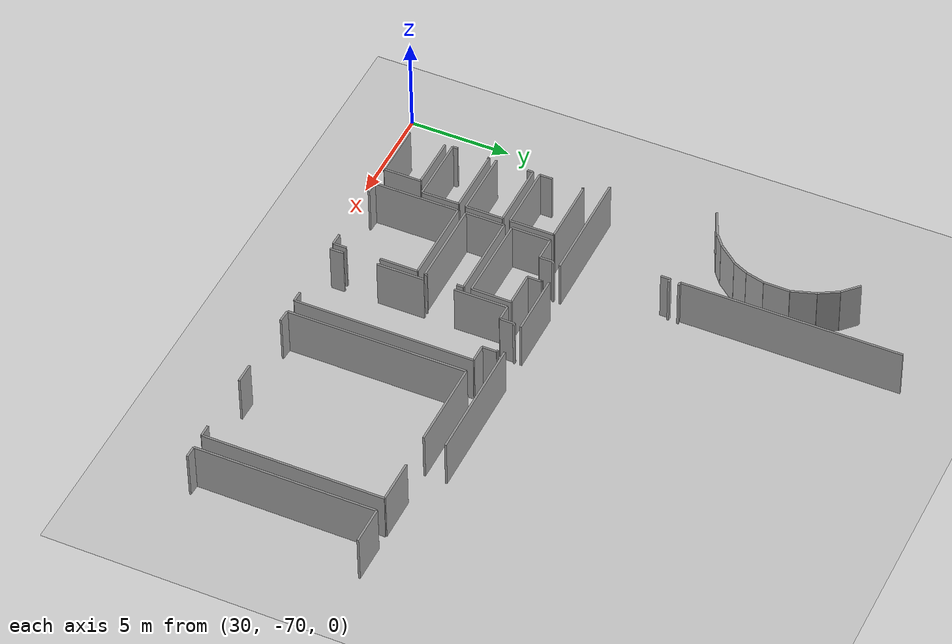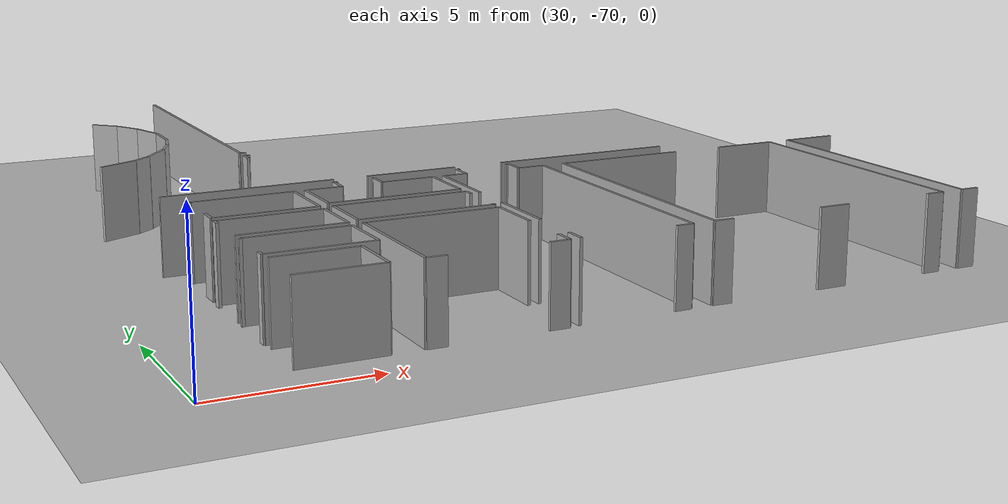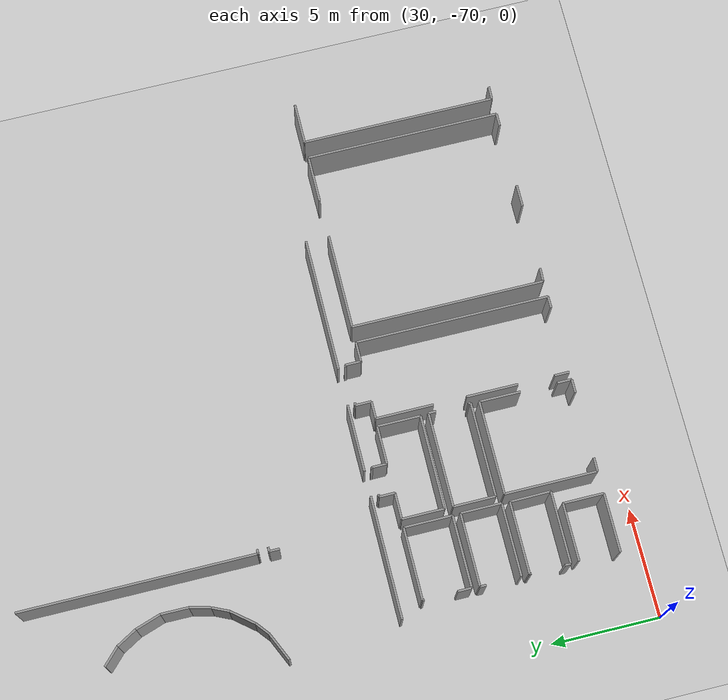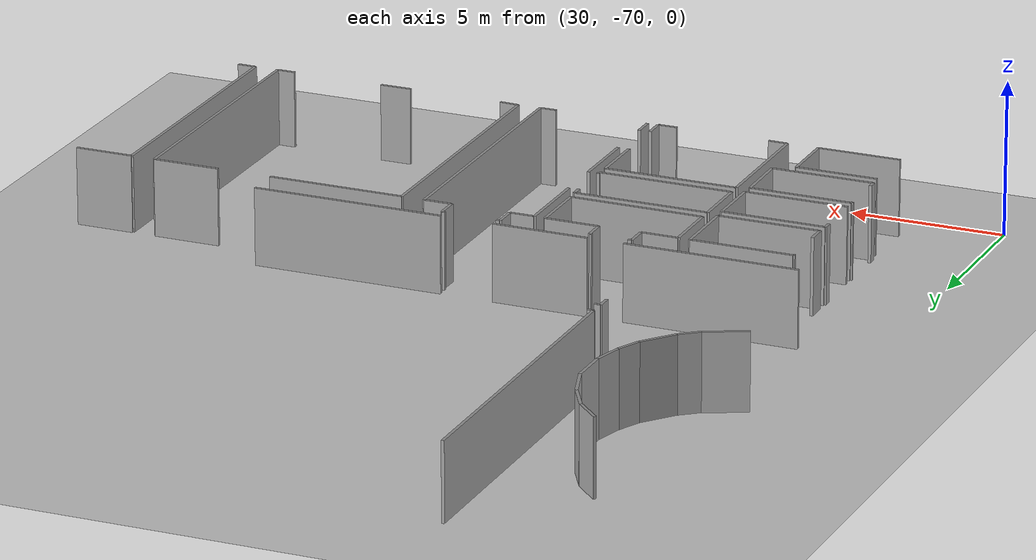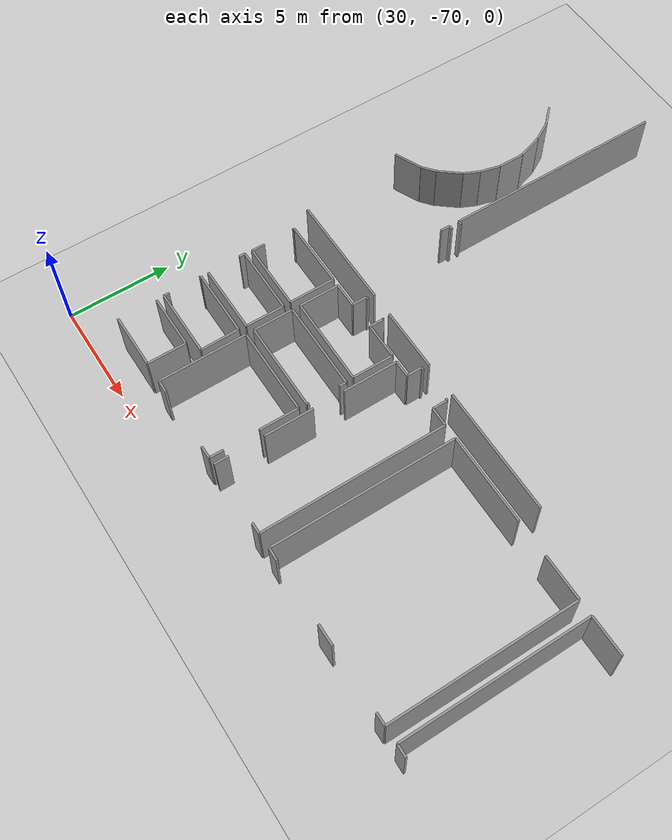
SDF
<sdf version="1.6">
 <world name="default">
  <model name="ground_plane">
   <static>1</static>
   <link name="link">
    <collision name="collision">
     <geometry><plane><normal>0 0 1</normal><size>100 100</size></plane></geometry>
     <surface><friction><ode><mu>100</mu><mu2>50</mu2></ode></friction></surface>
    </collision>
    <visual name="visual">
     <cast_shadows>0</cast_shadows>
     <geometry><plane><normal>0 0 1</normal><size>100 100</size></plane></geometry>
     <material>
      <script><uri>file://media/materials/scripts/gazebo.material</uri><name>Gazebo/Grey</name></script>
     </material>
    </visual>
   </link>
  </model>
  <model name="0510035519_A_40_1_102">
   <static>1</static>
   <link name="Wall_701">
    <collision name="Wall_701_Collision">
     <geometry><box><size>1.0274947132 0.1 2.5</size></box></geometry>
     <pose>0.5137473566 0 1.25 0 0 0</pose>
    </collision>
    <visual name="Wall_701_Visual">
     <pose>0.5137473566 0 1.25 0 0 0</pose>
     <geometry><box><size>1.0274947132 0.1 2.5</size></box></geometry>
     <material>
      <script><uri>file://media/materials/scripts/gazebo.material</uri><name>Gazebo/Grey</name></script>
      <ambient>1 1 1 1</ambient>
     </material>
    </visual>
    <pose>150.058203075 -114.531198373 0 0 0 -0.776827444455</pose>
   </link>
   <link name="Wall_702">
    <collision name="Wall_702_Collision">
     <geometry><box><size>1.05350558703 0.1 2.5</size></box></geometry>
     <pose>0.526752793515 0 1.25 0 0 0</pose>
    </collision>
    <visual name="Wall_702_Visual">
     <pose>0.526752793515 0 1.25 0 0 0</pose>
     <geometry><box><size>1.05350558703 0.1 2.5</size></box></geometry>
     <material>
      <script><uri>file://media/materials/scripts/gazebo.material</uri><name>Gazebo/Grey</name></script>
      <ambient>1 1 1 1</ambient>
     </material>
    </visual>
    <pose>150.790951836 -115.251493201 0 0 0 -1.0551213818</pose>
   </link>
   <link name="Wall_703">
    <collision name="Wall_703_Collision">
     <geometry><box><size>1.23149438151 0.1 2.5</size></box></geometry>
     <pose>0.615747190757 0 1.25 0 0 0</pose>
    </collision>
    <visual name="Wall_703_Visual">
     <pose>0.615747190757 0 1.25 0 0 0</pose>
     <geometry><box><size>1.23149438151 0.1 2.5</size></box></geometry>
     <material>
      <script><uri>file://media/materials/scripts/gazebo.material</uri><name>Gazebo/Grey</name></script>
      <ambient>1 1 1 1</ambient>
     </material>
    </visual>
    <pose>151.310458762 -116.168001017 0 0 0 -1.25452803049</pose>
   </link>
   <link name="Wall_704">
    <collision name="Wall_704_Collision">
     <geometry><box><size>1.27514872346 0.1 2.5</size></box></geometry>
     <pose>0.63757436173 0 1.25 0 0 0</pose>
    </collision>
    <visual name="Wall_704_Visual">
     <pose>0.63757436173 0 1.25 0 0 0</pose>
     <geometry><box><size>1.27514872346 0.1 2.5</size></box></geometry>
     <material>
      <script><uri>file://media/materials/scripts/gazebo.material</uri><name>Gazebo/Grey</name></script>
      <ambient>1 1 1 1</ambient>
     </material>
    </visual>
    <pose>151.693480747 -117.338416571 0 0 0 -1.57617797705</pose>
   </link>
   <link name="Wall_705">
    <collision name="Wall_705_Collision">
     <geometry><box><size>0.969298318984 0.1 2.5</size></box></geometry>
     <pose>0.484649159492 0 1.25 0 0 0</pose>
    </collision>
    <visual name="Wall_705_Visual">
     <pose>0.484649159492 0 1.25 0 0 0</pose>
     <geometry><box><size>0.969298318984 0.1 2.5</size></box></geometry>
     <material>
      <script><uri>file://media/materials/scripts/gazebo.material</uri><name>Gazebo/Grey</name></script>
      <ambient>1 1 1 1</ambient>
     </material>
    </visual>
    <pose>151.686618376 -118.613546829 0 0 0 -1.82200742004</pose>
   </link>
   <link name="Wall_706">
    <collision name="Wall_706_Collision">
     <geometry><box><size>0.806755276125 0.1 2.5</size></box></geometry>
     <pose>0.403377638063 0 1.25 0 0 0</pose>
    </collision>
    <visual name="Wall_706_Visual">
     <pose>0.403377638063 0 1.25 0 0 0</pose>
     <geometry><box><size>0.806755276125 0.1 2.5</size></box></geometry>
     <material>
      <script><uri>file://media/materials/scripts/gazebo.material</uri><name>Gazebo/Grey</name></script>
      <ambient>1 1 1 1</ambient>
     </material>
    </visual>
    <pose>151.445672894 -119.552420892 0 0 0 -2.00696670921</pose>
   </link>
   <link name="Wall_707">
    <collision name="Wall_707_Collision">
     <geometry><box><size>1.25017588832 0.1 2.5</size></box></geometry>
     <pose>0.625087944158 0 1.25 0 0 0</pose>
    </collision>
    <visual name="Wall_707_Visual">
     <pose>0.625087944158 0 1.25 0 0 0</pose>
     <geometry><box><size>1.25017588832 0.1 2.5</size></box></geometry>
     <material>
      <script><uri>file://media/materials/scripts/gazebo.material</uri><name>Gazebo/Grey</name></script>
      <ambient>1 1 1 1</ambient>
     </material>
    </visual>
    <pose>151.104841784 -120.283644682 0 0 0 -2.25264938914</pose>
   </link>
   <link name="Wall_708">
    <collision name="Wall_708_Collision">
     <geometry><box><size>0.734495353789 0.1 2.5</size></box></geometry>
     <pose>0.367247676894 0 1.25 0 0 0</pose>
    </collision>
    <visual name="Wall_708_Visual">
     <pose>0.367247676894 0 1.25 0 0 0</pose>
     <geometry><box><size>0.734495353789 0.1 2.5</size></box></geometry>
     <material>
      <script><uri>file://media/materials/scripts/gazebo.material</uri><name>Gazebo/Grey</name></script>
      <ambient>1 1 1 1</ambient>
     </material>
    </visual>
    <pose>150.316939891 -121.254288982 0 0 0 -2.46209601873</pose>
   </link>
   <link name="Wall_709">
    <collision name="Wall_709_Collision">
     <geometry><box><size>1.41161128623 0.1 2.5</size></box></geometry>
     <pose>0.705805643115 0 1.25 0 0 0</pose>
    </collision>
    <visual name="Wall_709_Visual">
     <pose>0.705805643115 0 1.25 0 0 0</pose>
     <geometry><box><size>1.41161128623 0.1 2.5</size></box></geometry>
     <material>
      <script><uri>file://media/materials/scripts/gazebo.material</uri><name>Gazebo/Grey</name></script>
      <ambient>1 1 1 1</ambient>
     </material>
    </visual>
    <pose>149.745583937 -121.715846995 0 0 0 -2.7162019537</pose>
   </link>
   <link name="Wall_770">
    <collision name="Wall_770_Collision">
     <geometry><box><size>3.28300927691 0.1 2.5</size></box></geometry>
     <pose>1.64150463845 0 1.25 0 0 0</pose>
    </collision>
    <visual name="Wall_770_Visual">
     <pose>1.64150463845 0 1.25 0 0 0</pose>
     <geometry><box><size>3.28300927691 0.1 2.5</size></box></geometry>
     <material>
      <script><uri>file://media/materials/scripts/gazebo.material</uri><name>Gazebo/Grey</name></script>
      <ambient>1 1 1 1</ambient>
     </material>
    </visual>
    <pose>149.57224552 -128.491294955 0 0 0 0.0</pose>
   </link>
   <link name="Wall_771">
    <collision name="Wall_771_Collision">
     <geometry><box><size>2.20688778752 0.1 2.5</size></box></geometry>
     <pose>1.10344389376 0 1.25 0 0 0</pose>
    </collision>
    <visual name="Wall_771_Visual">
     <pose>1.10344389376 0 1.25 0 0 0</pose>
     <geometry><box><size>2.20688778752 0.1 2.5</size></box></geometry>
     <material>
      <script><uri>file://media/materials/scripts/gazebo.material</uri><name>Gazebo/Grey</name></script>
      <ambient>1 1 1 1</ambient>
     </material>
    </visual>
    <pose>152.855254797 -128.491294955 0 0 0 -1.57079632679</pose>
   </link>
   <link name="Wall_772">
    <collision name="Wall_772_Collision">
     <geometry><box><size>3.27868852459 0.1 2.5</size></box></geometry>
     <pose>1.6393442623 0 1.25 0 0 0</pose>
    </collision>
    <visual name="Wall_772_Visual">
     <pose>1.6393442623 0 1.25 0 0 0</pose>
     <geometry><box><size>3.27868852459 0.1 2.5</size></box></geometry>
     <material>
      <script><uri>file://media/materials/scripts/gazebo.material</uri><name>Gazebo/Grey</name></script>
      <ambient>1 1 1 1</ambient>
     </material>
    </visual>
    <pose>152.855254797 -130.698182742 0 0 0 3.14159265359</pose>
   </link>
   <link name="Wall_773">
    <collision name="Wall_773_Collision">
     <geometry><box><size>0.629559029102 0.1 2.5</size></box></geometry>
     <pose>0.314779514551 0 1.25 0 0 0</pose>
    </collision>
    <visual name="Wall_773_Visual">
     <pose>0.314779514551 0 1.25 0 0 0</pose>
     <geometry><box><size>0.629559029102 0.1 2.5</size></box></geometry>
     <material>
      <script><uri>file://media/materials/scripts/gazebo.material</uri><name>Gazebo/Grey</name></script>
      <ambient>1 1 1 1</ambient>
     </material>
    </visual>
    <pose>149.576566273 -130.698182742 0 0 0 1.57079632679</pose>
   </link>
   <link name="Wall_774">
    <collision name="Wall_774_Collision">
     <geometry><box><size>0.0847461307844 0.1 2.5</size></box></geometry>
     <pose>0.0423730653922 0 1.25 0 0 0</pose>
    </collision>
    <visual name="Wall_774_Visual">
     <pose>0.0423730653922 0 1.25 0 0 0</pose>
     <geometry><box><size>0.0847461307844 0.1 2.5</size></box></geometry>
     <material>
      <script><uri>file://media/materials/scripts/gazebo.material</uri><name>Gazebo/Grey</name></script>
      <ambient>1 1 1 1</ambient>
     </material>
    </visual>
    <pose>149.576566273 -128.575930868 0 0 0 1.62180309715</pose>
   </link>
   <link name="Wall_775">
    <collision name="Wall_775_Collision">
     <geometry><box><size>3.32342101919 0.1 2.5</size></box></geometry>
     <pose>1.66171050959 0 1.25 0 0 0</pose>
    </collision>
    <visual name="Wall_775_Visual">
     <pose>1.66171050959 0 1.25 0 0 0</pose>
     <geometry><box><size>3.32342101919 0.1 2.5</size></box></geometry>
     <material>
      <script><uri>file://media/materials/scripts/gazebo.material</uri><name>Gazebo/Grey</name></script>
      <ambient>1 1 1 1</ambient>
     </material>
    </visual>
    <pose>152.867962892 -132.926165968 0 0 0 3.14159265359</pose>
   </link>
   <link name="Wall_777">
    <collision name="Wall_777_Collision">
     <geometry><box><size>0.283644681662 0.1 2.5</size></box></geometry>
     <pose>0.141822340831 0 1.25 0 0 0</pose>
    </collision>
    <visual name="Wall_777_Visual">
     <pose>0.141822340831 0 1.25 0 0 0</pose>
     <geometry><box><size>0.283644681662 0.1 2.5</size></box></geometry>
     <material>
      <script><uri>file://media/materials/scripts/gazebo.material</uri><name>Gazebo/Grey</name></script>
      <ambient>1 1 1 1</ambient>
     </material>
    </visual>
    <pose>149.544541873 -131.343499809 0 0 0 1.57079632679</pose>
   </link>
   <link name="Wall_778">
    <collision name="Wall_778_Collision">
     <geometry><box><size>3.326470962 0.1 2.5</size></box></geometry>
     <pose>1.663235481 0 1.25 0 0 0</pose>
    </collision>
    <visual name="Wall_778_Visual">
     <pose>1.663235481 0 1.25 0 0 0</pose>
     <geometry><box><size>3.326470962 0.1 2.5</size></box></geometry>
     <material>
      <script><uri>file://media/materials/scripts/gazebo.material</uri><name>Gazebo/Grey</name></script>
      <ambient>1 1 1 1</ambient>
     </material>
    </visual>
    <pose>149.544541873 -131.059855128 0 0 0 0.0</pose>
   </link>
   <link name="Wall_779">
    <collision name="Wall_779_Collision">
     <geometry><box><size>1.86631333213 0.1 2.5</size></box></geometry>
     <pose>0.933156666063 0 1.25 0 0 0</pose>
    </collision>
    <visual name="Wall_779_Visual">
     <pose>0.933156666063 0 1.25 0 0 0</pose>
     <geometry><box><size>1.86631333213 0.1 2.5</size></box></geometry>
     <material>
      <script><uri>file://media/materials/scripts/gazebo.material</uri><name>Gazebo/Grey</name></script>
      <ambient>1 1 1 1</ambient>
     </material>
    </visual>
    <pose>152.871012835 -131.059855128 0 0 0 -1.57243053479</pose>
   </link>
   <link name="Wall_780">
    <collision name="Wall_780_Collision">
     <geometry><box><size>3.30003812429 0.1 2.5</size></box></geometry>
     <pose>1.65001906214 0 1.25 0 0 0</pose>
    </collision>
    <visual name="Wall_780_Visual">
     <pose>1.65001906214 0 1.25 0 0 0</pose>
     <geometry><box><size>3.30003812429 0.1 2.5</size></box></geometry>
     <material>
      <script><uri>file://media/materials/scripts/gazebo.material</uri><name>Gazebo/Grey</name></script>
      <ambient>1 1 1 1</ambient>
     </material>
    </visual>
    <pose>152.863896302 -135.154911679 0 0 0 3.14159265359</pose>
   </link>
   <link name="Wall_781">
    <collision name="Wall_781_Collision">
     <geometry><box><size>0.26077011056 0.1 2.5</size></box></geometry>
     <pose>0.13038505528 0 1.25 0 0 0</pose>
    </collision>
    <visual name="Wall_781_Visual">
     <pose>0.13038505528 0 1.25 0 0 0</pose>
     <geometry><box><size>0.26077011056 0.1 2.5</size></box></geometry>
     <material>
      <script><uri>file://media/materials/scripts/gazebo.material</uri><name>Gazebo/Grey</name></script>
      <ambient>1 1 1 1</ambient>
     </material>
    </visual>
    <pose>149.563858178 -135.154911679 0 0 0 1.57079632679</pose>
   </link>
   <link name="Wall_782">
    <collision name="Wall_782_Collision">
     <geometry><box><size>0.0813318083619 0.1 2.5</size></box></geometry>
     <pose>0.040665904181 0 1.25 0 0 0</pose>
    </collision>
    <visual name="Wall_782_Visual">
     <pose>0.040665904181 0 1.25 0 0 0</pose>
     <geometry><box><size>0.0813318083619 0.1 2.5</size></box></geometry>
     <material>
      <script><uri>file://media/materials/scripts/gazebo.material</uri><name>Gazebo/Grey</name></script>
      <ambient>1 1 1 1</ambient>
     </material>
    </visual>
    <pose>149.563858178 -133.373745076 0 0 0 1.57079632679</pose>
   </link>
   <link name="Wall_783">
    <collision name="Wall_783_Collision">
     <geometry><box><size>3.27818020079 0.1 2.5</size></box></geometry>
     <pose>1.63909010039 0 1.25 0 0 0</pose>
    </collision>
    <visual name="Wall_783_Visual">
     <pose>1.63909010039 0 1.25 0 0 0</pose>
     <geometry><box><size>3.27818020079 0.1 2.5</size></box></geometry>
     <material>
      <script><uri>file://media/materials/scripts/gazebo.material</uri><name>Gazebo/Grey</name></script>
      <ambient>1 1 1 1</ambient>
     </material>
    </visual>
    <pose>149.563858178 -133.292413267 0 0 0 0.0</pose>
   </link>
   <link name="Wall_784">
    <collision name="Wall_784_Collision">
     <geometry><box><size>1.86262666727 0.1 2.5</size></box></geometry>
     <pose>0.931313333634 0 1.25 0 0 0</pose>
    </collision>
    <visual name="Wall_784_Visual">
     <pose>0.931313333634 0 1.25 0 0 0</pose>
     <geometry><box><size>1.86262666727 0.1 2.5</size></box></geometry>
     <material>
      <script><uri>file://media/materials/scripts/gazebo.material</uri><name>Gazebo/Grey</name></script>
      <ambient>1 1 1 1</ambient>
     </material>
    </visual>
    <pose>152.842038378 -133.292413267 0 0 0 -1.55906105768</pose>
   </link>
   <link name="Wall_785">
    <collision name="Wall_785_Collision">
     <geometry><box><size>2.61888422925 0.1 2.5</size></box></geometry>
     <pose>1.30944211463 0 1.25 0 0 0</pose>
    </collision>
    <visual name="Wall_785_Visual">
     <pose>1.30944211463 0 1.25 0 0 0</pose>
     <geometry><box><size>2.61888422925 0.1 2.5</size></box></geometry>
     <material>
      <script><uri>file://media/materials/scripts/gazebo.material</uri><name>Gazebo/Grey</name></script>
      <ambient>1 1 1 1</ambient>
     </material>
    </visual>
    <pose>149.59893252 -135.532596264 0 0 0 0.0</pose>
   </link>
   <link name="Wall_786">
    <collision name="Wall_786_Collision">
     <geometry><box><size>1.85563604016 0.1 2.5</size></box></geometry>
     <pose>0.927818020079 0 1.25 0 0 0</pose>
    </collision>
    <visual name="Wall_786_Visual">
     <pose>0.927818020079 0 1.25 0 0 0</pose>
     <geometry><box><size>1.85563604016 0.1 2.5</size></box></geometry>
     <material>
      <script><uri>file://media/materials/scripts/gazebo.material</uri><name>Gazebo/Grey</name></script>
      <ambient>1 1 1 1</ambient>
     </material>
    </visual>
    <pose>152.217816749 -135.532596264 0 0 0 -1.57079632679</pose>
   </link>
   <link name="Wall_787">
    <collision name="Wall_787_Collision">
     <geometry><box><size>2.67962892362 0.1 2.5</size></box></geometry>
     <pose>1.33981446181 0 1.25 0 0 0</pose>
    </collision>
    <visual name="Wall_787_Visual">
     <pose>1.33981446181 0 1.25 0 0 0</pose>
     <geometry><box><size>2.67962892362 0.1 2.5</size></box></geometry>
     <material>
      <script><uri>file://media/materials/scripts/gazebo.material</uri><name>Gazebo/Grey</name></script>
      <ambient>1 1 1 1</ambient>
     </material>
    </visual>
    <pose>152.217816749 -137.388232304 0 0 0 3.14159265359</pose>
   </link>
   <link name="Wall_791">
    <collision name="Wall_791_Collision">
     <geometry><box><size>1.93391790571 0.1 2.5</size></box></geometry>
     <pose>0.966958952853 0 1.25 0 0 0</pose>
    </collision>
    <visual name="Wall_791_Visual">
     <pose>0.966958952853 0 1.25 0 0 0</pose>
     <geometry><box><size>1.93391790571 0.1 2.5</size></box></geometry>
     <material>
      <script><uri>file://media/materials/scripts/gazebo.material</uri><name>Gazebo/Grey</name></script>
      <ambient>1 1 1 1</ambient>
     </material>
    </visual>
    <pose>153.23395603 -130.430550261 0 0 0 1.57079632679</pose>
   </link>
   <link name="Wall_792">
    <collision name="Wall_792_Collision">
     <geometry><box><size>1.19634006862 0.1 2.5</size></box></geometry>
     <pose>0.598170034312 0 1.25 0 0 0</pose>
    </collision>
    <visual name="Wall_792_Visual">
     <pose>0.598170034312 0 1.25 0 0 0</pose>
     <geometry><box><size>1.19634006862 0.1 2.5</size></box></geometry>
     <material>
      <script><uri>file://media/materials/scripts/gazebo.material</uri><name>Gazebo/Grey</name></script>
      <ambient>1 1 1 1</ambient>
     </material>
    </visual>
    <pose>153.23395603 -128.496632355 0 0 0 0.0</pose>
   </link>
   <link name="Wall_793">
    <collision name="Wall_793_Collision">
     <geometry><box><size>0.715719913585 0.1 2.5</size></box></geometry>
     <pose>0.357859956792 0 1.25 0 0 0</pose>
    </collision>
    <visual name="Wall_793_Visual">
     <pose>0.357859956792 0 1.25 0 0 0</pose>
     <geometry><box><size>0.715719913585 0.1 2.5</size></box></geometry>
     <material>
      <script><uri>file://media/materials/scripts/gazebo.material</uri><name>Gazebo/Grey</name></script>
      <ambient>1 1 1 1</ambient>
     </material>
    </visual>
    <pose>154.430296099 -128.496632355 0 0 0 1.57079632679</pose>
   </link>
   <link name="Wall_794">
    <collision name="Wall_794_Collision">
     <geometry><box><size>0.12123522684 0.1 2.5</size></box></geometry>
     <pose>0.0606176134198 0 1.25 0 0 0</pose>
    </collision>
    <visual name="Wall_794_Visual">
     <pose>0.0606176134198 0 1.25 0 0 0</pose>
     <geometry><box><size>0.12123522684 0.1 2.5</size></box></geometry>
     <material>
      <script><uri>file://media/materials/scripts/gazebo.material</uri><name>Gazebo/Grey</name></script>
      <ambient>1 1 1 1</ambient>
     </material>
    </visual>
    <pose>154.430296099 -127.780912441 0 0 0 0.0</pose>
   </link>
   <link name="Wall_795">
    <collision name="Wall_795_Collision">
     <geometry><box><size>0.0617613419748 0.1 2.5</size></box></geometry>
     <pose>0.0308806709874 0 1.25 0 0 0</pose>
    </collision>
    <visual name="Wall_795_Visual">
     <pose>0.0308806709874 0 1.25 0 0 0</pose>
     <geometry><box><size>0.0617613419748 0.1 2.5</size></box></geometry>
     <material>
      <script><uri>file://media/materials/scripts/gazebo.material</uri><name>Gazebo/Grey</name></script>
      <ambient>1 1 1 1</ambient>
     </material>
    </visual>
    <pose>155.720421909 -127.780912441 0 0 0 0.0</pose>
   </link>
   <link name="Wall_796">
    <collision name="Wall_796_Collision">
     <geometry><box><size>0.68979539967 0.1 2.5</size></box></geometry>
     <pose>0.344897699835 0 1.25 0 0 0</pose>
    </collision>
    <visual name="Wall_796_Visual">
     <pose>0.344897699835 0 1.25 0 0 0</pose>
     <geometry><box><size>0.68979539967 0.1 2.5</size></box></geometry>
     <material>
      <script><uri>file://media/materials/scripts/gazebo.material</uri><name>Gazebo/Grey</name></script>
      <ambient>1 1 1 1</ambient>
     </material>
    </visual>
    <pose>155.782183251 -127.780912441 0 0 0 -1.57079632679</pose>
   </link>
   <link name="Wall_797">
    <collision name="Wall_797_Collision">
     <geometry><box><size>1.74024653704 0.1 2.5</size></box></geometry>
     <pose>0.870123268522 0 1.25 0 0 0</pose>
    </collision>
    <visual name="Wall_797_Visual">
     <pose>0.870123268522 0 1.25 0 0 0</pose>
     <geometry><box><size>1.74024653704 0.1 2.5</size></box></geometry>
     <material>
      <script><uri>file://media/materials/scripts/gazebo.material</uri><name>Gazebo/Grey</name></script>
      <ambient>1 1 1 1</ambient>
     </material>
    </visual>
    <pose>155.782183251 -128.470707841 0 0 0 0.0</pose>
   </link>
   <link name="Wall_798">
    <collision name="Wall_798_Collision">
     <geometry><box><size>1.98170034312 0.1 2.5</size></box></geometry>
     <pose>0.990850171559 0 1.25 0 0 0</pose>
    </collision>
    <visual name="Wall_798_Visual">
     <pose>0.990850171559 0 1.25 0 0 0</pose>
     <geometry><box><size>1.98170034312 0.1 2.5</size></box></geometry>
     <material>
      <script><uri>file://media/materials/scripts/gazebo.material</uri><name>Gazebo/Grey</name></script>
      <ambient>1 1 1 1</ambient>
     </material>
    </visual>
    <pose>157.522429788 -128.470707841 0 0 0 -1.57079632679</pose>
   </link>
   <link name="Wall_799">
    <collision name="Wall_799_Collision">
     <geometry><box><size>4.28852946125 0.1 2.5</size></box></geometry>
     <pose>2.14426473063 0 1.25 0 0 0</pose>
    </collision>
    <visual name="Wall_799_Visual">
     <pose>2.14426473063 0 1.25 0 0 0</pose>
     <geometry><box><size>4.28852946125 0.1 2.5</size></box></geometry>
     <material>
      <script><uri>file://media/materials/scripts/gazebo.material</uri><name>Gazebo/Grey</name></script>
      <ambient>1 1 1 1</ambient>
     </material>
    </visual>
    <pose>157.522429788 -130.452408184 0 0 0 3.13649579735</pose>
   </link>
   <link name="Wall_800">
    <collision name="Wall_800_Collision">
     <geometry><box><size>1.92832634388 0.1 2.5</size></box></geometry>
     <pose>0.964163171941 0 1.25 0 0 0</pose>
    </collision>
    <visual name="Wall_800_Visual">
     <pose>0.964163171941 0 1.25 0 0 0</pose>
     <geometry><box><size>1.92832634388 0.1 2.5</size></box></geometry>
     <material>
      <script><uri>file://media/materials/scripts/gazebo.material</uri><name>Gazebo/Grey</name></script>
      <ambient>1 1 1 1</ambient>
     </material>
    </visual>
    <pose>153.22988944 -132.751556742 0 0 0 1.57079632679</pose>
   </link>
   <link name="Wall_801">
    <collision name="Wall_801_Collision">
     <geometry><box><size>4.33066463337 0.1 2.5</size></box></geometry>
     <pose>2.16533231669 0 1.25 0 0 0</pose>
    </collision>
    <visual name="Wall_801_Visual">
     <pose>2.16533231669 0 1.25 0 0 0</pose>
     <geometry><box><size>4.33066463337 0.1 2.5</size></box></geometry>
     <material>
      <script><uri>file://media/materials/scripts/gazebo.material</uri><name>Gazebo/Grey</name></script>
      <ambient>1 1 1 1</ambient>
     </material>
    </visual>
    <pose>153.22988944 -130.823230398 0 0 0 0.0</pose>
   </link>
   <link name="Wall_802">
    <collision name="Wall_802_Collision">
     <geometry><box><size>0.33930613801 0.1 2.5</size></box></geometry>
     <pose>0.169653069005 0 1.25 0 0 0</pose>
    </collision>
    <visual name="Wall_802_Visual">
     <pose>0.169653069005 0 1.25 0 0 0</pose>
     <geometry><box><size>0.33930613801 0.1 2.5</size></box></geometry>
     <material>
      <script><uri>file://media/materials/scripts/gazebo.material</uri><name>Gazebo/Grey</name></script>
      <ambient>1 1 1 1</ambient>
     </material>
    </visual>
    <pose>157.560554073 -130.823230398 0 0 0 -1.57079632679</pose>
   </link>
   <link name="Wall_803">
    <collision name="Wall_803_Collision">
     <geometry><box><size>0.109289617486 0.1 2.5</size></box></geometry>
     <pose>0.0546448087432 0 1.25 0 0 0</pose>
    </collision>
    <visual name="Wall_803_Visual">
     <pose>0.0546448087432 0 1.25 0 0 0</pose>
     <geometry><box><size>0.109289617486 0.1 2.5</size></box></geometry>
     <material>
      <script><uri>file://media/materials/scripts/gazebo.material</uri><name>Gazebo/Grey</name></script>
      <ambient>1 1 1 1</ambient>
     </material>
    </visual>
    <pose>157.560554073 -132.647350362 0 0 0 -1.57079632679</pose>
   </link>
   <link name="Wall_804">
    <collision name="Wall_804_Collision">
     <geometry><box><size>4.33066761667 0.1 2.5</size></box></geometry>
     <pose>2.16533380833 0 1.25 0 0 0</pose>
    </collision>
    <visual name="Wall_804_Visual">
     <pose>2.16533380833 0 1.25 0 0 0</pose>
     <geometry><box><size>4.33066761667 0.1 2.5</size></box></geometry>
     <material>
      <script><uri>file://media/materials/scripts/gazebo.material</uri><name>Gazebo/Grey</name></script>
      <ambient>1 1 1 1</ambient>
     </material>
    </visual>
    <pose>157.560554073 -132.75663998 0 0 0 3.14041887632</pose>
   </link>
   <link name="Wall_805">
    <collision name="Wall_805_Collision">
     <geometry><box><size>4.23738721566 0.1 2.5</size></box></geometry>
     <pose>2.11869360783 0 1.25 0 0 0</pose>
    </collision>
    <visual name="Wall_805_Visual">
     <pose>2.11869360783 0 1.25 0 0 0</pose>
     <geometry><box><size>4.23738721566 0.1 2.5</size></box></geometry>
     <material>
      <script><uri>file://media/materials/scripts/gazebo.material</uri><name>Gazebo/Grey</name></script>
      <ambient>1 1 1 1</ambient>
     </material>
    </visual>
    <pose>153.235735163 -137.383403228 0 0 0 1.57079632679</pose>
   </link>
   <link name="Wall_806">
    <collision name="Wall_806_Collision">
     <geometry><box><size>4.28974456729 0.1 2.5</size></box></geometry>
     <pose>2.14487228364 0 1.25 0 0 0</pose>
    </collision>
    <visual name="Wall_806_Visual">
     <pose>2.14487228364 0 1.25 0 0 0</pose>
     <geometry><box><size>4.28974456729 0.1 2.5</size></box></geometry>
     <material>
      <script><uri>file://media/materials/scripts/gazebo.material</uri><name>Gazebo/Grey</name></script>
      <ambient>1 1 1 1</ambient>
     </material>
    </visual>
    <pose>153.235735163 -133.146016012 0 0 0 0.0</pose>
   </link>
   <link name="Wall_807">
    <collision name="Wall_807_Collision">
     <geometry><box><size>1.88130639217 0.1 2.5</size></box></geometry>
     <pose>0.940653196086 0 1.25 0 0 0</pose>
    </collision>
    <visual name="Wall_807_Visual">
     <pose>0.940653196086 0 1.25 0 0 0</pose>
     <geometry><box><size>1.88130639217 0.1 2.5</size></box></geometry>
     <material>
      <script><uri>file://media/materials/scripts/gazebo.material</uri><name>Gazebo/Grey</name></script>
      <ambient>1 1 1 1</ambient>
     </material>
    </visual>
    <pose>157.525479731 -133.146016012 0 0 0 -1.57079632679</pose>
   </link>
   <link name="Wall_808">
    <collision name="Wall_808_Collision">
     <geometry><box><size>0.66514169526 0.1 2.5</size></box></geometry>
     <pose>0.33257084763 0 1.25 0 0 0</pose>
    </collision>
    <visual name="Wall_808_Visual">
     <pose>0.33257084763 0 1.25 0 0 0</pose>
     <geometry><box><size>0.66514169526 0.1 2.5</size></box></geometry>
     <material>
      <script><uri>file://media/materials/scripts/gazebo.material</uri><name>Gazebo/Grey</name></script>
      <ambient>1 1 1 1</ambient>
     </material>
    </visual>
    <pose>157.525479731 -136.727919685 0 0 0 -1.57079632679</pose>
   </link>
   <link name="Wall_809">
    <collision name="Wall_809_Collision">
     <geometry><box><size>0.622188333969 0.1 2.5</size></box></geometry>
     <pose>0.311094166984 0 1.25 0 0 0</pose>
    </collision>
    <visual name="Wall_809_Visual">
     <pose>0.311094166984 0 1.25 0 0 0</pose>
     <geometry><box><size>0.622188333969 0.1 2.5</size></box></geometry>
     <material>
      <script><uri>file://media/materials/scripts/gazebo.material</uri><name>Gazebo/Grey</name></script>
      <ambient>1 1 1 1</ambient>
     </material>
    </visual>
    <pose>157.525479731 -137.39306138 0 0 0 3.14159265359</pose>
   </link>
   <link name="Wall_810">
    <collision name="Wall_810_Collision">
     <geometry><box><size>0.620230241123 0.1 2.5</size></box></geometry>
     <pose>0.310115120562 0 1.25 0 0 0</pose>
    </collision>
    <visual name="Wall_810_Visual">
     <pose>0.310115120562 0 1.25 0 0 0</pose>
     <geometry><box><size>0.620230241123 0.1 2.5</size></box></geometry>
     <material>
      <script><uri>file://media/materials/scripts/gazebo.material</uri><name>Gazebo/Grey</name></script>
      <ambient>1 1 1 1</ambient>
     </material>
    </visual>
    <pose>153.855890202 -137.39306138 0 0 0 3.12602014201</pose>
   </link>
   <link name="Wall_811">
    <collision name="Wall_811_Collision">
     <geometry><box><size>0.80213495997 0.1 2.5</size></box></geometry>
     <pose>0.401067479985 0 1.25 0 0 0</pose>
    </collision>
    <visual name="Wall_811_Visual">
     <pose>0.401067479985 0 1.25 0 0 0</pose>
     <geometry><box><size>0.80213495997 0.1 2.5</size></box></geometry>
     <material>
      <script><uri>file://media/materials/scripts/gazebo.material</uri><name>Gazebo/Grey</name></script>
      <ambient>1 1 1 1</ambient>
     </material>
    </visual>
    <pose>157.877748126 -128.493582412 0 0 0 0.0</pose>
   </link>
   <link name="Wall_812">
    <collision name="Wall_812_Collision">
     <geometry><box><size>0.729698818147 0.1 2.5</size></box></geometry>
     <pose>0.364849409074 0 1.25 0 0 0</pose>
    </collision>
    <visual name="Wall_812_Visual">
     <pose>0.364849409074 0 1.25 0 0 0</pose>
     <geometry><box><size>0.729698818147 0.1 2.5</size></box></geometry>
     <material>
      <script><uri>file://media/materials/scripts/gazebo.material</uri><name>Gazebo/Grey</name></script>
      <ambient>1 1 1 1</ambient>
     </material>
    </visual>
    <pose>158.679883086 -128.493582412 0 0 0 1.57079632679</pose>
   </link>
   <link name="Wall_813">
    <collision name="Wall_813_Collision">
     <geometry><box><size>0.122760198246 0.1 2.5</size></box></geometry>
     <pose>0.0613800991231 0 1.25 0 0 0</pose>
    </collision>
    <visual name="Wall_813_Visual">
     <pose>0.0613800991231 0 1.25 0 0 0</pose>
     <geometry><box><size>0.122760198246 0.1 2.5</size></box></geometry>
     <material>
      <script><uri>file://media/materials/scripts/gazebo.material</uri><name>Gazebo/Grey</name></script>
      <ambient>1 1 1 1</ambient>
     </material>
    </visual>
    <pose>158.679883086 -127.763883594 0 0 0 0.0</pose>
   </link>
   <link name="Wall_814">
    <collision name="Wall_814_Collision">
     <geometry><box><size>0.0991231414411 0.1 2.5</size></box></geometry>
     <pose>0.0495615707205 0 1.25 0 0 0</pose>
    </collision>
    <visual name="Wall_814_Visual">
     <pose>0.0495615707205 0 1.25 0 0 0</pose>
     <geometry><box><size>0.0991231414411 0.1 2.5</size></box></geometry>
     <material>
      <script><uri>file://media/materials/scripts/gazebo.material</uri><name>Gazebo/Grey</name></script>
      <ambient>1 1 1 1</ambient>
     </material>
    </visual>
    <pose>160.477570212 -127.763883594 0 0 0 0.0</pose>
   </link>
   <link name="Wall_815">
    <collision name="Wall_815_Collision">
     <geometry><box><size>0.721819799212 0.1 2.5</size></box></geometry>
     <pose>0.360909899606 0 1.25 0 0 0</pose>
    </collision>
    <visual name="Wall_815_Visual">
     <pose>0.360909899606 0 1.25 0 0 0</pose>
     <geometry><box><size>0.721819799212 0.1 2.5</size></box></geometry>
     <material>
      <script><uri>file://media/materials/scripts/gazebo.material</uri><name>Gazebo/Grey</name></script>
      <ambient>1 1 1 1</ambient>
     </material>
    </visual>
    <pose>160.576693354 -127.763883594 0 0 0 -1.57079632679</pose>
   </link>
   <link name="Wall_816">
    <collision name="Wall_816_Collision">
     <geometry><box><size>0.906341339433 0.1 2.5</size></box></geometry>
     <pose>0.453170669717 0 1.25 0 0 0</pose>
    </collision>
    <visual name="Wall_816_Visual">
     <pose>0.453170669717 0 1.25 0 0 0</pose>
     <geometry><box><size>0.906341339433 0.1 2.5</size></box></geometry>
     <material>
      <script><uri>file://media/materials/scripts/gazebo.material</uri><name>Gazebo/Grey</name></script>
      <ambient>1 1 1 1</ambient>
     </material>
    </visual>
    <pose>160.576693354 -128.485703393 0 0 0 0.0</pose>
   </link>
   <link name="Wall_817">
    <collision name="Wall_817_Collision">
     <geometry><box><size>8.89388740628 0.1 2.5</size></box></geometry>
     <pose>4.44694370314 0 1.25 0 0 0</pose>
    </collision>
    <visual name="Wall_817_Visual">
     <pose>4.44694370314 0 1.25 0 0 0</pose>
     <geometry><box><size>8.89388740628 0.1 2.5</size></box></geometry>
     <material>
      <script><uri>file://media/materials/scripts/gazebo.material</uri><name>Gazebo/Grey</name></script>
      <ambient>1 1 1 1</ambient>
     </material>
    </visual>
    <pose>161.483034693 -128.485703393 0 0 0 -1.57079632679</pose>
   </link>
   <link name="Wall_818">
    <collision name="Wall_818_Collision">
     <geometry><box><size>0.540856525607 0.1 2.5</size></box></geometry>
     <pose>0.270428262803 0 1.25 0 0 0</pose>
    </collision>
    <visual name="Wall_818_Visual">
     <pose>0.270428262803 0 1.25 0 0 0</pose>
     <geometry><box><size>0.540856525607 0.1 2.5</size></box></geometry>
     <material>
      <script><uri>file://media/materials/scripts/gazebo.material</uri><name>Gazebo/Grey</name></script>
      <ambient>1 1 1 1</ambient>
     </material>
    </visual>
    <pose>161.483034693 -137.379590799 0 0 0 3.14159265359</pose>
   </link>
   <link name="Wall_819">
    <collision name="Wall_819_Collision">
     <geometry><box><size>0.682933028339 0.1 2.5</size></box></geometry>
     <pose>0.34146651417 0 1.25 0 0 0</pose>
    </collision>
    <visual name="Wall_819_Visual">
     <pose>0.34146651417 0 1.25 0 0 0</pose>
     <geometry><box><size>0.682933028339 0.1 2.5</size></box></geometry>
     <material>
      <script><uri>file://media/materials/scripts/gazebo.material</uri><name>Gazebo/Grey</name></script>
      <ambient>1 1 1 1</ambient>
     </material>
    </visual>
    <pose>157.877493964 -137.379590799 0 0 0 1.57079632679</pose>
   </link>
   <link name="Wall_820">
    <collision name="Wall_820_Collision">
     <geometry><box><size>2.36777227094 0.1 2.5</size></box></geometry>
     <pose>1.18388613547 0 1.25 0 0 0</pose>
    </collision>
    <visual name="Wall_820_Visual">
     <pose>1.18388613547 0 1.25 0 0 0</pose>
     <geometry><box><size>2.36777227094 0.1 2.5</size></box></geometry>
     <material>
      <script><uri>file://media/materials/scripts/gazebo.material</uri><name>Gazebo/Grey</name></script>
      <ambient>1 1 1 1</ambient>
     </material>
    </visual>
    <pose>157.877493964 -135.014614309 0 0 0 1.57079632679</pose>
   </link>
   <link name="Wall_821">
    <collision name="Wall_821_Collision">
     <geometry><box><size>2.64226713638 0.1 2.5</size></box></geometry>
     <pose>1.32113356819 0 1.25 0 0 0</pose>
    </collision>
    <visual name="Wall_821_Visual">
     <pose>1.32113356819 0 1.25 0 0 0</pose>
     <geometry><box><size>2.64226713638 0.1 2.5</size></box></geometry>
     <material>
      <script><uri>file://media/materials/scripts/gazebo.material</uri><name>Gazebo/Grey</name></script>
      <ambient>1 1 1 1</ambient>
     </material>
    </visual>
    <pose>157.877493964 -131.135849536 0 0 0 1.57070013595</pose>
   </link>
   <link name="Wall_822">
    <collision name="Wall_822_Collision">
     <geometry><box><size>8.86694624476 0.1 2.5</size></box></geometry>
     <pose>4.43347312238 0 1.25 0 0 0</pose>
    </collision>
    <visual name="Wall_822_Visual">
     <pose>4.43347312238 0 1.25 0 0 0</pose>
     <geometry><box><size>8.86694624476 0.1 2.5</size></box></geometry>
     <material>
      <script><uri>file://media/materials/scripts/gazebo.material</uri><name>Gazebo/Grey</name></script>
      <ambient>1 1 1 1</ambient>
     </material>
    </visual>
    <pose>162.22188334 -137.357732876 0 0 0 1.57079632679</pose>
   </link>
   <link name="Wall_823">
    <collision name="Wall_823_Collision">
     <geometry><box><size>4.3817511755 0.1 2.5</size></box></geometry>
     <pose>2.19087558775 0 1.25 0 0 0</pose>
    </collision>
    <visual name="Wall_823_Visual">
     <pose>2.19087558775 0 1.25 0 0 0</pose>
     <geometry><box><size>4.3817511755 0.1 2.5</size></box></geometry>
     <material>
      <script><uri>file://media/materials/scripts/gazebo.material</uri><name>Gazebo/Grey</name></script>
      <ambient>1 1 1 1</ambient>
     </material>
    </visual>
    <pose>162.22188334 -128.490786631 0 0 0 0.0</pose>
   </link>
   <link name="Wall_824">
    <collision name="Wall_824_Collision">
     <geometry><box><size>2.14868471216 0.1 2.5</size></box></geometry>
     <pose>1.07434235608 0 1.25 0 0 0</pose>
    </collision>
    <visual name="Wall_824_Visual">
     <pose>1.07434235608 0 1.25 0 0 0</pose>
     <geometry><box><size>2.14868471216 0.1 2.5</size></box></geometry>
     <material>
      <script><uri>file://media/materials/scripts/gazebo.material</uri><name>Gazebo/Grey</name></script>
      <ambient>1 1 1 1</ambient>
     </material>
    </visual>
    <pose>168.347947643 -128.490786631 0 0 0 0.0</pose>
   </link>
   <link name="Wall_825">
    <collision name="Wall_825_Collision">
     <geometry><box><size>8.89744567289 0.1 2.5</size></box></geometry>
     <pose>4.44872283645 0 1.25 0 0 0</pose>
    </collision>
    <visual name="Wall_825_Visual">
     <pose>4.44872283645 0 1.25 0 0 0</pose>
     <geometry><box><size>8.89744567289 0.1 2.5</size></box></geometry>
     <material>
      <script><uri>file://media/materials/scripts/gazebo.material</uri><name>Gazebo/Grey</name></script>
      <ambient>1 1 1 1</ambient>
     </material>
    </visual>
    <pose>170.496632355 -128.490786631 0 0 0 -1.57079632679</pose>
   </link>
   <link name="Wall_826">
    <collision name="Wall_826_Collision">
     <geometry><box><size>0.591434743932 0.1 2.5</size></box></geometry>
     <pose>0.295717371966 0 1.25 0 0 0</pose>
    </collision>
    <visual name="Wall_826_Visual">
     <pose>0.295717371966 0 1.25 0 0 0</pose>
     <geometry><box><size>0.591434743932 0.1 2.5</size></box></geometry>
     <material>
      <script><uri>file://media/materials/scripts/gazebo.material</uri><name>Gazebo/Grey</name></script>
      <ambient>1 1 1 1</ambient>
     </material>
    </visual>
    <pose>170.496632355 -137.388232304 0 0 0 3.14159265359</pose>
   </link>
   <link name="Wall_827">
    <collision name="Wall_827_Collision">
     <geometry><box><size>1.0120726903 0.1 2.5</size></box></geometry>
     <pose>0.506036345152 0 1.25 0 0 0</pose>
    </collision>
    <visual name="Wall_827_Visual">
     <pose>0.506036345152 0 1.25 0 0 0</pose>
     <geometry><box><size>1.0120726903 0.1 2.5</size></box></geometry>
     <material>
      <script><uri>file://media/materials/scripts/gazebo.material</uri><name>Gazebo/Grey</name></script>
      <ambient>1 1 1 1</ambient>
     </material>
    </visual>
    <pose>166.917270301 -137.388232304 0 0 0 3.14159265359</pose>
   </link>
   <link name="Wall_828">
    <collision name="Wall_828_Collision">
     <geometry><box><size>0.62344313511 0.1 2.5</size></box></geometry>
     <pose>0.311721567555 0 1.25 0 0 0</pose>
    </collision>
    <visual name="Wall_828_Visual">
     <pose>0.311721567555 0 1.25 0 0 0</pose>
     <geometry><box><size>0.62344313511 0.1 2.5</size></box></geometry>
     <material>
      <script><uri>file://media/materials/scripts/gazebo.material</uri><name>Gazebo/Grey</name></script>
      <ambient>1 1 1 1</ambient>
     </material>
    </visual>
    <pose>162.844579997 -137.388232304 0 0 0 3.09265217283</pose>
   </link>
   <link name="Wall_829">
    <collision name="Wall_829_Collision">
     <geometry><box><size>8.88270428263 0.1 2.5</size></box></geometry>
     <pose>4.44135214131 0 1.25 0 0 0</pose>
    </collision>
    <visual name="Wall_829_Visual">
     <pose>4.44135214131 0 1.25 0 0 0</pose>
     <geometry><box><size>8.88270428263 0.1 2.5</size></box></geometry>
     <material>
      <script><uri>file://media/materials/scripts/gazebo.material</uri><name>Gazebo/Grey</name></script>
      <ambient>1 1 1 1</ambient>
     </material>
    </visual>
    <pose>171.268522049 -137.373999238 0 0 0 1.57079632679</pose>
   </link>
   <link name="Wall_830">
    <collision name="Wall_830_Collision">
     <geometry><box><size>1.8660566781 0.1 2.5</size></box></geometry>
     <pose>0.933028339052 0 1.25 0 0 0</pose>
    </collision>
    <visual name="Wall_830_Visual">
     <pose>0.933028339052 0 1.25 0 0 0</pose>
     <geometry><box><size>1.8660566781 0.1 2.5</size></box></geometry>
     <material>
      <script><uri>file://media/materials/scripts/gazebo.material</uri><name>Gazebo/Grey</name></script>
      <ambient>1 1 1 1</ambient>
     </material>
    </visual>
    <pose>171.268522049 -128.491294955 0 0 0 0.0</pose>
   </link>
   <link name="Wall_835">
    <collision name="Wall_835_Collision">
     <geometry><box><size>0.594086467811 0.1 2.5</size></box></geometry>
     <pose>0.297043233905 0 1.25 0 0 0</pose>
    </collision>
    <visual name="Wall_835_Visual">
     <pose>0.297043233905 0 1.25 0 0 0</pose>
     <geometry><box><size>0.594086467811 0.1 2.5</size></box></geometry>
     <material>
      <script><uri>file://media/materials/scripts/gazebo.material</uri><name>Gazebo/Grey</name></script>
      <ambient>1 1 1 1</ambient>
     </material>
    </visual>
    <pose>171.862498411 -137.385436523 0 0 0 3.12233957715</pose>
   </link>
   <link name="Wall_859">
    <collision name="Wall_859_Collision">
     <geometry><box><size>10.7741771508 0.1 2.5</size></box></geometry>
     <pose>5.38708857542 0 1.25 0 0 0</pose>
    </collision>
    <visual name="Wall_859_Visual">
     <pose>5.38708857542 0 1.25 0 0 0</pose>
     <geometry><box><size>10.7741771508 0.1 2.5</size></box></geometry>
     <material>
      <script><uri>file://media/materials/scripts/gazebo.material</uri><name>Gazebo/Grey</name></script>
      <ambient>1 1 1 1</ambient>
     </material>
    </visual>
    <pose>153.256830601 -122.02007879 0 0 0 1.57079632679</pose>
   </link>
   <link name="Wall_876">
    <collision name="Wall_876_Collision">
     <geometry><box><size>0.201042063795 0.1 2.5</size></box></geometry>
     <pose>0.100521031897 0 1.25 0 0 0</pose>
    </collision>
    <visual name="Wall_876_Visual">
     <pose>0.100521031897 0 1.25 0 0 0</pose>
     <geometry><box><size>0.201042063795 0.1 2.5</size></box></geometry>
     <material>
      <script><uri>file://media/materials/scripts/gazebo.material</uri><name>Gazebo/Grey</name></script>
      <ambient>1 1 1 1</ambient>
     </material>
    </visual>
    <pose>153.452281103 -122.04549498 0 0 0 3.14159265359</pose>
   </link>
   <link name="Wall_877">
    <collision name="Wall_877_Collision">
     <geometry><box><size>0.0260239943803 0.1 2.5</size></box></geometry>
     <pose>0.0130119971902 0 1.25 0 0 0</pose>
    </collision>
    <visual name="Wall_877_Visual">
     <pose>0.0130119971902 0 1.25 0 0 0</pose>
     <geometry><box><size>0.0260239943803 0.1 2.5</size></box></geometry>
     <material>
      <script><uri>file://media/materials/scripts/gazebo.material</uri><name>Gazebo/Grey</name></script>
      <ambient>1 1 1 1</ambient>
     </material>
    </visual>
    <pose>153.251239039 -122.04549498 0 0 0 1.35424602182</pose>
   </link>
   <link name="Wall_885">
    <collision name="Wall_885_Collision">
     <geometry><box><size>0.465878764773 0.1 2.5</size></box></geometry>
     <pose>0.232939382387 0 1.25 0 0 0</pose>
    </collision>
    <visual name="Wall_885_Visual">
     <pose>0.232939382387 0 1.25 0 0 0</pose>
     <geometry><box><size>0.465878764773 0.1 2.5</size></box></geometry>
     <material>
      <script><uri>file://media/materials/scripts/gazebo.material</uri><name>Gazebo/Grey</name></script>
      <ambient>1 1 1 1</ambient>
     </material>
    </visual>
    <pose>153.238530944 -123.007243614 0 0 0 1.57079632679</pose>
   </link>
   <link name="Wall_886">
    <collision name="Wall_886_Collision">
     <geometry><box><size>0.194688016266 0.1 2.5</size></box></geometry>
     <pose>0.0973440081332 0 1.25 0 0 0</pose>
    </collision>
    <visual name="Wall_886_Visual">
     <pose>0.0973440081332 0 1.25 0 0 0</pose>
     <geometry><box><size>0.194688016266 0.1 2.5</size></box></geometry>
     <material>
      <script><uri>file://media/materials/scripts/gazebo.material</uri><name>Gazebo/Grey</name></script>
      <ambient>1 1 1 1</ambient>
     </material>
    </visual>
    <pose>153.238530944 -122.541364849 0 0 0 0.0</pose>
   </link>
   <link name="Wall_893">
    <collision name="Wall_893_Collision">
     <geometry><box><size>6.14258482653 0.1 2.5</size></box></geometry>
     <pose>3.07129241327 0 1.25 0 0 0</pose>
    </collision>
    <visual name="Wall_893_Visual">
     <pose>3.07129241327 0 1.25 0 0 0</pose>
     <geometry><box><size>6.14258482653 0.1 2.5</size></box></geometry>
     <material>
      <script><uri>file://media/materials/scripts/gazebo.material</uri><name>Gazebo/Grey</name></script>
      <ambient>1 1 1 1</ambient>
     </material>
    </visual>
    <pose>166.612021858 -127.431693989 0 0 0 3.14159265359</pose>
   </link>
   <link name="Wall_894">
    <collision name="Wall_894_Collision">
     <geometry><box><size>3.06925911806 0.1 2.5</size></box></geometry>
     <pose>1.53462955903 0 1.25 0 0 0</pose>
    </collision>
    <visual name="Wall_894_Visual">
     <pose>1.53462955903 0 1.25 0 0 0</pose>
     <geometry><box><size>3.06925911806 0.1 2.5</size></box></geometry>
     <material>
      <script><uri>file://media/materials/scripts/gazebo.material</uri><name>Gazebo/Grey</name></script>
      <ambient>1 1 1 1</ambient>
     </material>
    </visual>
    <pose>158.771635532 -127.431693989 0 0 0 3.14159265359</pose>
   </link>
   <link name="Wall_895">
    <collision name="Wall_895_Collision">
     <geometry><box><size>5.57554962511 0.1 2.5</size></box></geometry>
     <pose>2.78777481256 0 1.25 0 0 0</pose>
    </collision>
    <visual name="Wall_895_Visual">
     <pose>2.78777481256 0 1.25 0 0 0</pose>
     <geometry><box><size>5.57554962511 0.1 2.5</size></box></geometry>
     <material>
      <script><uri>file://media/materials/scripts/gazebo.material</uri><name>Gazebo/Grey</name></script>
      <ambient>1 1 1 1</ambient>
     </material>
    </visual>
    <pose>154.550006354 -127.431693989 0 0 0 3.14159265359</pose>
   </link>
   <pose>-116.6 68.721527513 0 0 0 0</pose>
  </model>
 </world>
</sdf>
